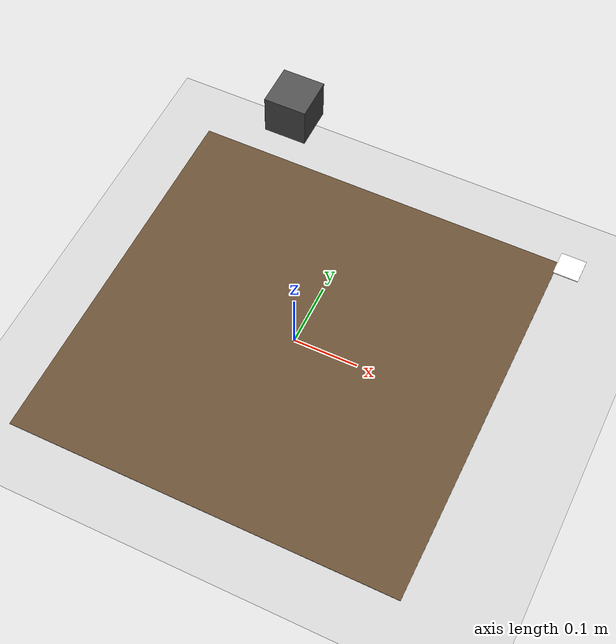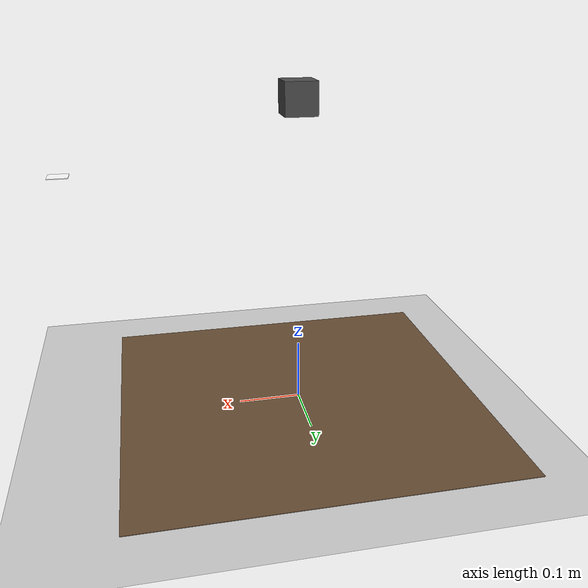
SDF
<?xml version="1.0"?>
<sdf version="1.8">
  <world name="aruco_tracking_world">

    <!-- Physics -->
    <physics name="1ms" type="ignored">
      <max_step_size>0.001</max_step_size>
      <real_time_factor>1</real_time_factor>
    </physics>

    <!-- Required plugins for Gazebo Harmonic -->
    <plugin filename="gz-sim-physics-system" name="gz::sim::systems::Physics"/>
    <plugin filename="gz-sim-user-commands-system" name="gz::sim::systems::UserCommands"/>
    <plugin filename="gz-sim-scene-broadcaster-system" name="gz::sim::systems::SceneBroadcaster"/>
    <plugin filename="gz-sim-sensors-system" name="gz::sim::systems::Sensors">
      <render_engine>ogre2</render_engine>
    </plugin>

    <!-- Scene -->
    <scene>
      <ambient>0.4 0.4 0.4 1</ambient>
      <background>0.7 0.7 0.7 1</background>
      <shadows>true</shadows>
    </scene>

    <!-- Sun -->
    <light type="directional" name="sun">
      <cast_shadows>true</cast_shadows>
      <pose>0 0 10 0 0 0</pose>
      <diffuse>0.8 0.8 0.8 1</diffuse>
      <specular>0.2 0.2 0.2 1</specular>
      <direction>-0.5 0.1 -0.9</direction>
    </light>

    <!-- Additional fill light -->
    <light type="directional" name="fill_light">
      <cast_shadows>false</cast_shadows>
      <pose>-5 5 5 0 0 0</pose>
      <diffuse>0.4 0.4 0.4 1</diffuse>
      <specular>0.1 0.1 0.1 1</specular>
      <direction>0.5 -0.5 -0.5</direction>
    </light>

    <!-- Ground Plane -->
    <model name="ground_plane">
      <static>true</static>
      <link name="link">
        <collision name="collision">
          <geometry>
            <plane>
              <normal>0 0 1</normal>
              <size>100 100</size>
            </plane>
          </geometry>
        </collision>
        <visual name="visual">
          <geometry>
            <plane>
              <normal>0 0 1</normal>
              <size>100 100</size>
            </plane>
          </geometry>
          <material>
            <ambient>0.8 0.8 0.8 1</ambient>
            <diffuse>0.8 0.8 0.8 1</diffuse>
          </material>
        </visual>
      </link>
    </model>

    <!-- ArUco Marker - positioned in front of robot, within reach -->
    <model name="aruco_marker">
      <static>false</static>
      <pose>0.35 0.0 0.4 0 0 3.14159</pose>
      <link name="marker_link">
        <inertial>
          <mass>0.01</mass>
          <inertia>
            <ixx>0.0001</ixx>
            <iyy>0.0001</iyy>
            <izz>0.0001</izz>
          </inertia>
        </inertial>
        <visual name="visual">
          <geometry>
            <box>
              <size>0.03 0.03 0.001</size>
            </box>
          </geometry>
          <material>
            <ambient>1 1 1 1</ambient>
            <diffuse>1 1 1 1</diffuse>
            <pbr>
              <metal>
                <albedo_map>model://aruco_marker_4x4/materials/textures/aruco_marker_0.png</albedo_map>
              </metal>
            </pbr>
          </material>
        </visual>
        <collision name="collision">
          <geometry>
            <box>
              <size>0.03 0.03 0.001</size>
            </box>
          </geometry>
        </collision>
      </link>
    </model>

    <!-- Camera Model - positioned to view both robot and marker -->
    <model name="camera">
      <static>true</static>
      <pose>0 0 0.5 0 0 0</pose>

      <link name="camera_link">
        <visual name="visual">
          <geometry>
            <box>
              <size>0.05 0.05 0.05</size>
            </box>
          </geometry>
          <material>
            <ambient>0.3 0.3 0.3 1</ambient>
            <diffuse>0.3 0.3 0.3 1</diffuse>
          </material>
        </visual>

        <collision name="collision">
          <geometry>
            <box>
              <size>0.05 0.05 0.05</size>
            </box>
          </geometry>
        </collision>

        <sensor name="camera" type="camera">
          <camera>
            <horizontal_fov>1.047</horizontal_fov>
            <image>
              <width>640</width>
              <height>480</height>
              <format>R8G8B8</format>
            </image>
            <clip>
              <near>0.01</near>
              <far>100</far>
            </clip>
            <noise>
              <type>gaussian</type>
              <mean>0.0</mean>
              <stddev>0.007</stddev>
            </noise>
          </camera>
          <always_on>1</always_on>
          <update_rate>30</update_rate>
          <visualize>true</visualize>
          <topic>camera</topic>
        </sensor>
      </link>
    </model>

    <!-- Table for the robot to sit on (optional) -->
    <model name="table">
      <static>true</static>
      <pose>0 0 -0.025 0 0 0</pose>
      <link name="link">
        <collision name="collision">
          <geometry>
            <box>
              <size>0.6 0.6 0.05</size>
            </box>
          </geometry>
        </collision>
        <visual name="visual">
          <geometry>
            <box>
              <size>0.6 0.6 0.05</size>
            </box>
          </geometry>
          <material>
            <ambient>0.4 0.3 0.2 1</ambient>
            <diffuse>0.4 0.3 0.2 1</diffuse>
          </material>
        </visual>
      </link>
    </model>

    <!-- GUI -->
    <gui fullscreen='0'>
      <camera name='user_camera'>
        <pose>-0.8 0.8 0.8 0 0.4 -0.8</pose>
      </camera>
    </gui>

  </world>
</sdf>
